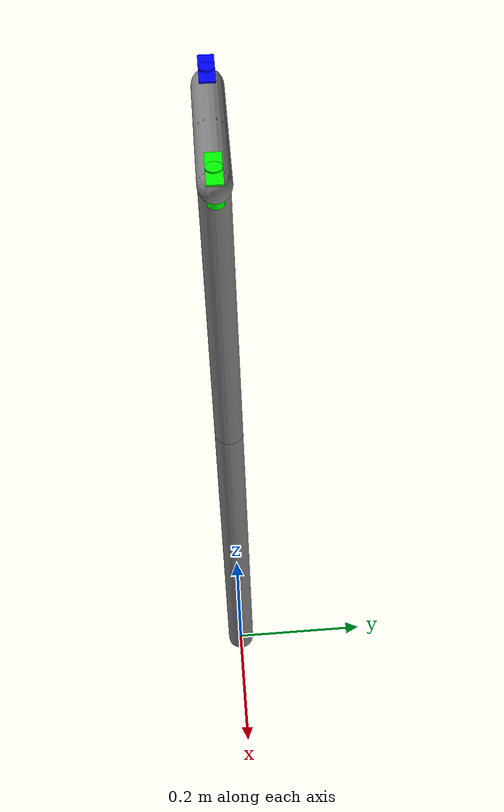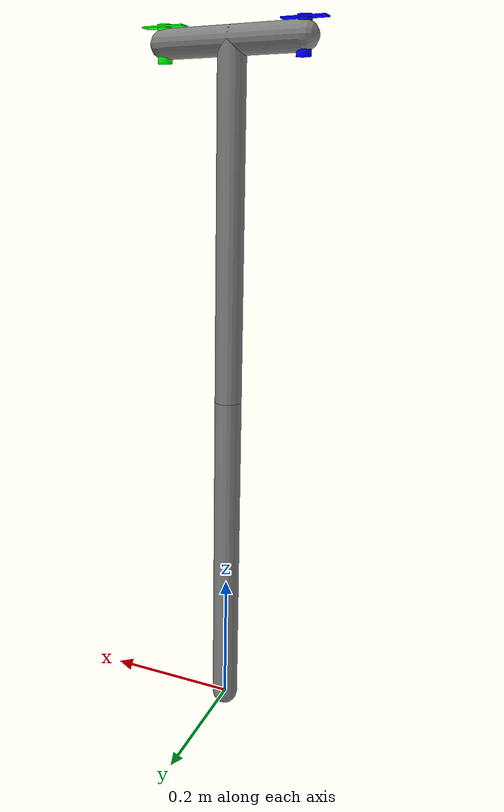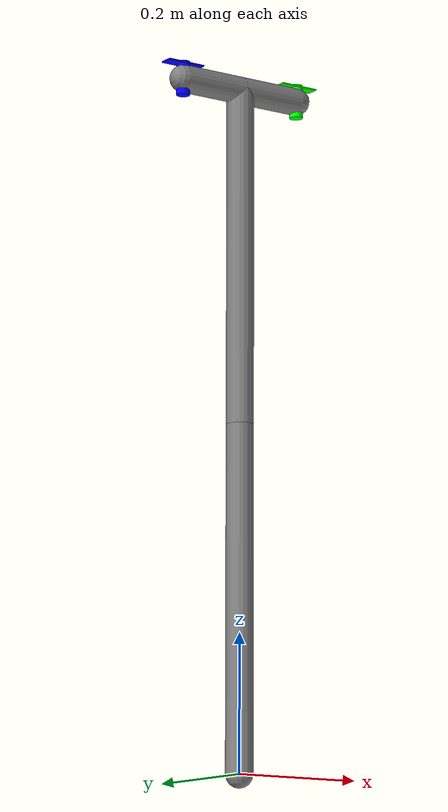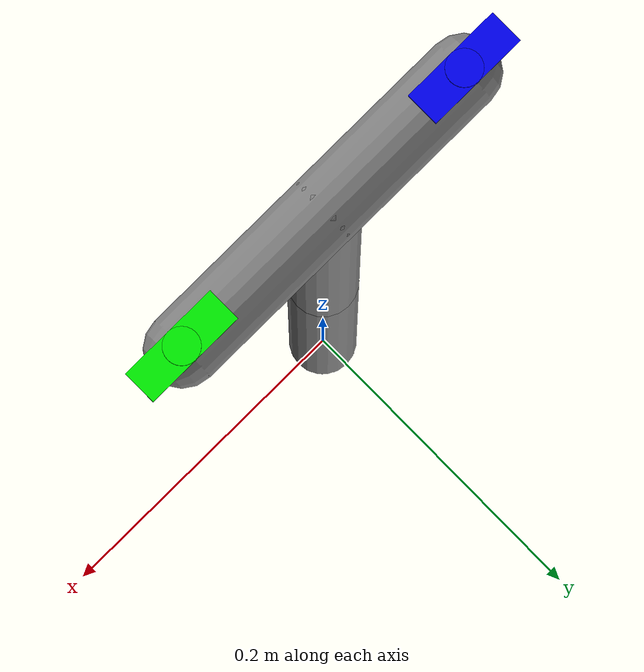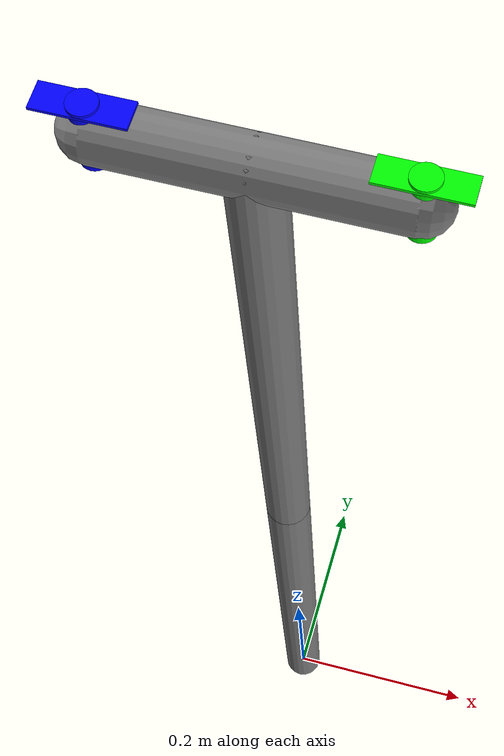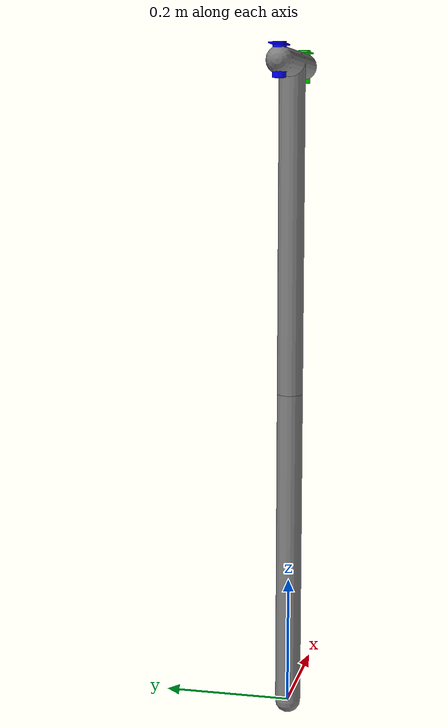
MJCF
<mujoco>
    <option>
        <flag gravity = "enable"/>
    </option>
    <worldbody>
        <body name = "link_1" quat = "1 0 0 0">
            <joint type = "ball"  name = "ground_joint"/>
            <geom type = "capsule" fromto = "0 0 0 0 0 0.5" name = "leg" size = ".02" mass = "1"/>
            <body name = "stick_2" pos = "0 0 .5">
                <joint type = "hinge" axis = "0 1 0" name = "middle_joint" pos = "0 0 0"/>
                <geom type = "capsule" size = ".02" fromto = "0 0 0 0 0 .5"  mass = "1"/>
                <site name = "stick_end" pos = "0 0 .5"/>
                <body name = "prop_base" pos = "0 0 .5" >
                    <joint type = "ball" name = "prop_base_joint"/>
                    <geom name = "base_stick" type = "capsule" fromto = "-.1 0 0 .1 0 0" size = ".02" mass = "1"/>
                    <body name = "propeller_1" pos = ".1 0 0">
                        <geom name = "propeller_1_stick" type = "cylinder" size = ".01 .025" rgba = "0 1 0 1" mass = "0"/>
                        <site name = "propeller_1_fan" type = "box" size = ".03 .01 .001" pos = "0 0 .022" rgba = "0 1 0 1" />
                    </body>
                    <body name = "propeller_2" pos = "-.1 0 0">
                        <geom name = "propeller_2_stick" type = "cylinder" size = ".01 .025" rgba = "0 0 1 1" mass = "0"/>
                        <site name = "propeller_2_fan" type = "box" size = ".03 .01 .001" pos = "0 0 .022" rgba = "0 0 1 1" />
                    </body>
                </body>
            </body>

        </body>
    </worldbody>
</mujoco>
